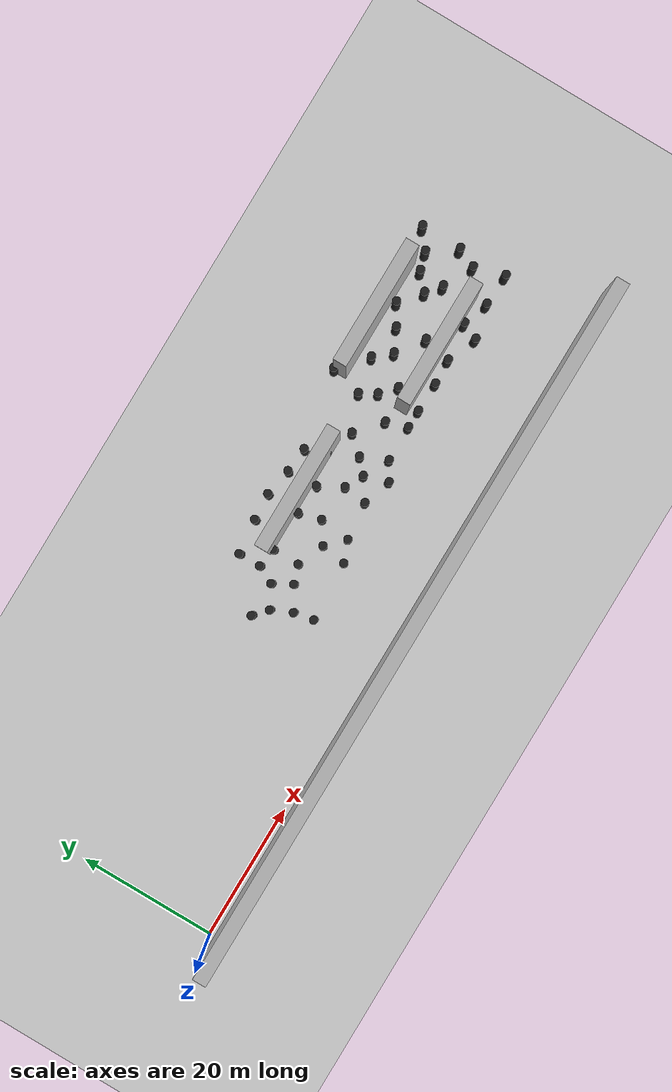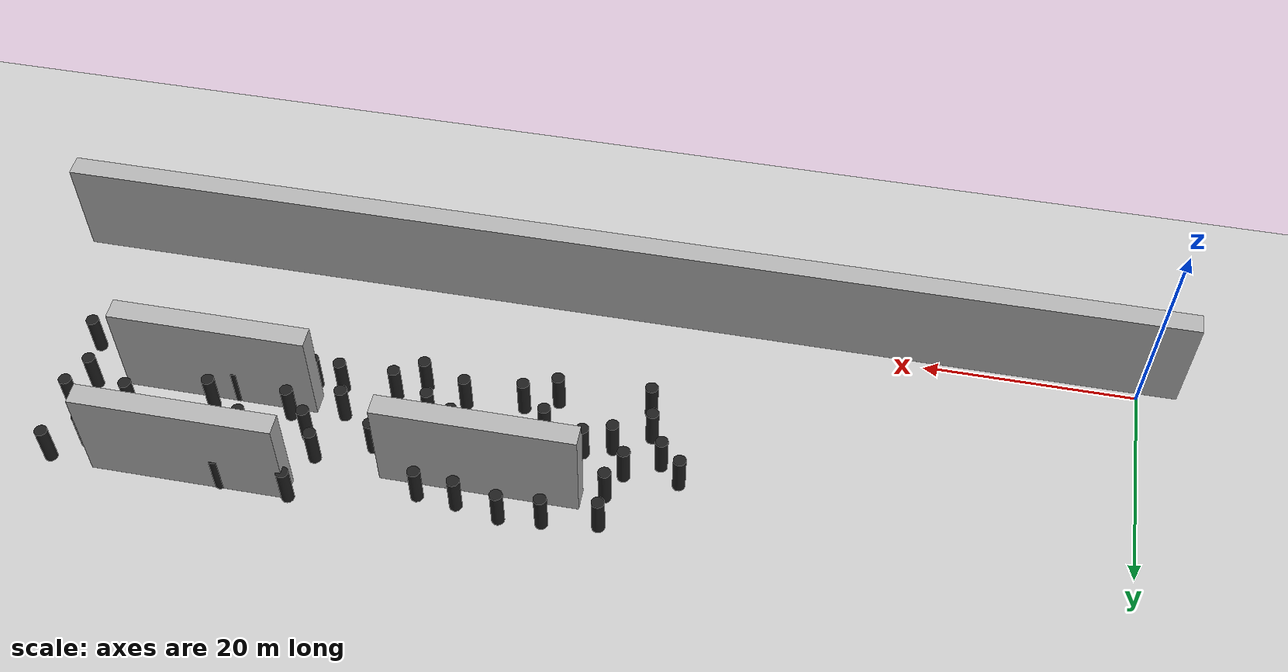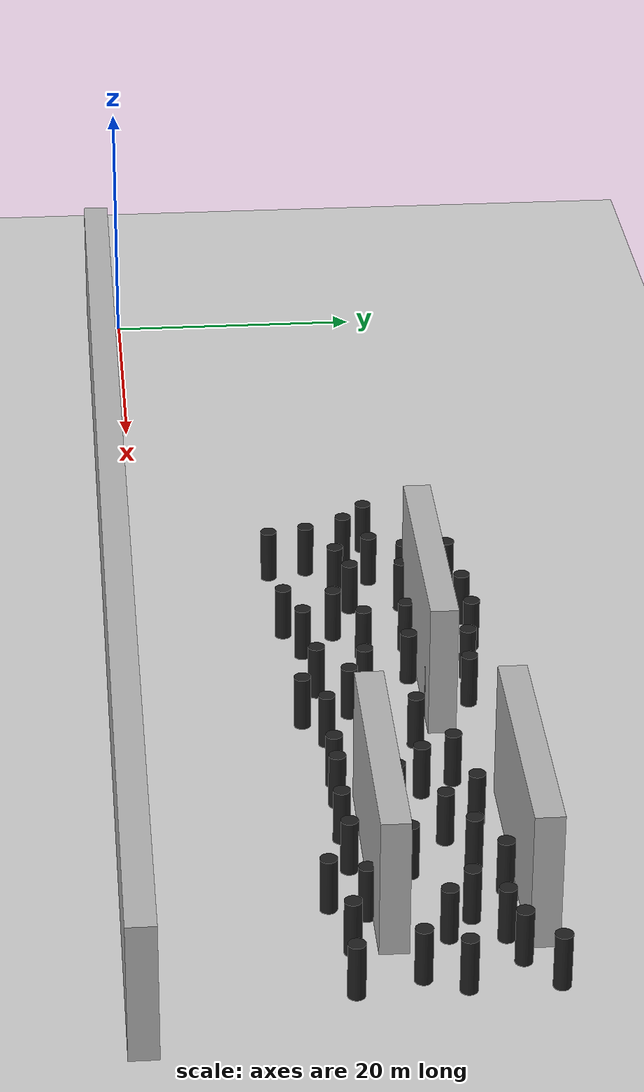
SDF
<sdf version="1.7">
 <world name="default">
  <model name="ground_plane">
   <pose>20 20 0 0 -0 0</pose>
   <static>1</static>
   <link name="link">
    <collision name="collision">
     <geometry><plane><normal>0 0 1</normal><size>200 200</size></plane></geometry>
     <surface><friction><ode><mu>100</mu><mu2>50</mu2></ode></friction></surface>
    </collision>
    <visual name="visual">
     <cast_shadows>0</cast_shadows>
     <geometry><plane><normal>0 0 1</normal><size>200 200</size></plane></geometry>
     <material>
      <script><uri>file://media/materials/scripts/gazebo.material</uri><name>Gazebo/Grey</name></script>
     </material>
    </visual>
   </link>
  </model>
  <model name="pillar_bottom_area_0">
   <static>1</static>
   <pose>47.0649 20.12 0 0 -0 0</pose>
   <link name="link">
    <pose>0 0 2 0 -0 0</pose>
    <inertial>
     <mass>1</mass>
     <inertia><ixx>0.083</ixx><ixy>0</ixy><ixz>0</ixz><iyy>0.083</iyy><iyz>0</iyz><izz>0.083</izz></inertia>
    </inertial>
    <collision name="collision">
     <geometry><cylinder><radius>0.6</radius><length>4</length></cylinder></geometry>
    </collision>
    <visual name="visual">
     <geometry><cylinder><radius>0.6</radius><length>4</length></cylinder></geometry>
     <material>
      <script><uri>file://media/materials/scripts/gazebo.material</uri><name>Gazebo/Black</name></script>
     </material>
    </visual>
   </link>
  </model>
  <model name="pillar_bottom_area_1">
   <static>1</static>
   <pose>84.1416 12.7099 0 0 -0 0</pose>
   <link name="link">
    <pose>0 0 2 0 -0 0</pose>
    <inertial>
     <mass>1</mass>
     <inertia><ixx>0.083</ixx><ixy>0</ixy><ixz>0</ixz><iyy>0.083</iyy><iyz>0</iyz><izz>0.083</izz></inertia>
    </inertial>
    <collision name="collision">
     <geometry><cylinder><radius>0.6</radius><length>4</length></cylinder></geometry>
    </collision>
    <visual name="visual">
     <geometry><cylinder><radius>0.6</radius><length>4</length></cylinder></geometry>
     <material>
      <script><uri>file://media/materials/scripts/gazebo.material</uri><name>Gazebo/Black</name></script>
     </material>
    </visual>
   </link>
  </model>
  <model name="pillar_bottom_area_2">
   <static>1</static>
   <pose>72.5903 15.6556 0 0 -0 0</pose>
   <link name="link">
    <pose>0 0 2 0 -0 0</pose>
    <inertial>
     <mass>1</mass>
     <inertia><ixx>0.083</ixx><ixy>0</ixy><ixz>0</ixz><iyy>0.083</iyy><iyz>0</iyz><izz>0.083</izz></inertia>
    </inertial>
    <collision name="collision">
     <geometry><cylinder><radius>0.6</radius><length>4</length></cylinder></geometry>
    </collision>
    <visual name="visual">
     <geometry><cylinder><radius>0.6</radius><length>4</length></cylinder></geometry>
     <material>
      <script><uri>file://media/materials/scripts/gazebo.material</uri><name>Gazebo/Black</name></script>
     </material>
    </visual>
   </link>
  </model>
  <model name="pillar_bottom_area_6">
   <static>1</static>
   <pose>76.1727 12.587 0 0 -0 0</pose>
   <link name="link">
    <pose>0 0 2 0 -0 0</pose>
    <inertial>
     <mass>1</mass>
     <inertia><ixx>0.083</ixx><ixy>0</ixy><ixz>0</ixz><iyy>0.083</iyy><iyz>0</iyz><izz>0.083</izz></inertia>
    </inertial>
    <collision name="collision">
     <geometry><cylinder><radius>0.6</radius><length>4</length></cylinder></geometry>
    </collision>
    <visual name="visual">
     <geometry><cylinder><radius>0.6</radius><length>4</length></cylinder></geometry>
     <material>
      <script><uri>file://media/materials/scripts/gazebo.material</uri><name>Gazebo/Black</name></script>
     </material>
    </visual>
   </link>
  </model>
  <model name="pillar_bottom_area_11">
   <static>1</static>
   <pose>53.8203 14.1874 0 0 -0 0</pose>
   <link name="link">
    <pose>0 0 2 0 -0 0</pose>
    <inertial>
     <mass>1</mass>
     <inertia><ixx>0.083</ixx><ixy>0</ixy><ixz>0</ixz><iyy>0.083</iyy><iyz>0</iyz><izz>0.083</izz></inertia>
    </inertial>
    <collision name="collision">
     <geometry><cylinder><radius>0.6</radius><length>4</length></cylinder></geometry>
    </collision>
    <visual name="visual">
     <geometry><cylinder><radius>0.6</radius><length>4</length></cylinder></geometry>
     <material>
      <script><uri>file://media/materials/scripts/gazebo.material</uri><name>Gazebo/Black</name></script>
     </material>
    </visual>
   </link>
  </model>
  <model name="pillar_bottom_area_15">
   <static>1</static>
   <pose>56.7745 16.1801 0 0 -0 0</pose>
   <link name="link">
    <pose>0 0 2 0 -0 0</pose>
    <inertial>
     <mass>1</mass>
     <inertia><ixx>0.083</ixx><ixy>0</ixy><ixz>0</ixz><iyy>0.083</iyy><iyz>0</iyz><izz>0.083</izz></inertia>
    </inertial>
    <collision name="collision">
     <geometry><cylinder><radius>0.6</radius><length>4</length></cylinder></geometry>
    </collision>
    <visual name="visual">
     <geometry><cylinder><radius>0.6</radius><length>4</length></cylinder></geometry>
     <material>
      <script><uri>file://media/materials/scripts/gazebo.material</uri><name>Gazebo/Black</name></script>
     </material>
    </visual>
   </link>
  </model>
  <model name="pillar_bottom_area_16">
   <static>1</static>
   <pose>60.0538 23.4727 0 0 -0 0</pose>
   <link name="link">
    <pose>0 0 2 0 -0 0</pose>
    <inertial>
     <mass>1</mass>
     <inertia><ixx>0.083</ixx><ixy>0</ixy><ixz>0</ixz><iyy>0.083</iyy><iyz>0</iyz><izz>0.083</izz></inertia>
    </inertial>
    <collision name="collision">
     <geometry><cylinder><radius>0.6</radius><length>4</length></cylinder></geometry>
    </collision>
    <visual name="visual">
     <geometry><cylinder><radius>0.6</radius><length>4</length></cylinder></geometry>
     <material>
      <script><uri>file://media/materials/scripts/gazebo.material</uri><name>Gazebo/Black</name></script>
     </material>
    </visual>
   </link>
  </model>
  <model name="pillar_bottom_area_18">
   <static>1</static>
   <pose>97.912 19.0956 0 0 -0 0</pose>
   <link name="link">
    <pose>0 0 2 0 -0 0</pose>
    <inertial>
     <mass>1</mass>
     <inertia><ixx>0.083</ixx><ixy>0</ixy><ixz>0</ixz><iyy>0.083</iyy><iyz>0</iyz><izz>0.083</izz></inertia>
    </inertial>
    <collision name="collision">
     <geometry><cylinder><radius>0.6</radius><length>4</length></cylinder></geometry>
    </collision>
    <visual name="visual">
     <geometry><cylinder><radius>0.6</radius><length>4</length></cylinder></geometry>
     <material>
      <script><uri>file://media/materials/scripts/gazebo.material</uri><name>Gazebo/Black</name></script>
     </material>
    </visual>
   </link>
  </model>
  <model name="pillar_bottom_area_24">
   <static>1</static>
   <pose>42.6407 15.8855 0 0 -0 0</pose>
   <link name="link">
    <pose>0 0 2 0 -0 0</pose>
    <inertial>
     <mass>1</mass>
     <inertia><ixx>0.083</ixx><ixy>0</ixy><ixz>0</ixz><iyy>0.083</iyy><iyz>0</iyz><izz>0.083</izz></inertia>
    </inertial>
    <collision name="collision">
     <geometry><cylinder><radius>0.6</radius><length>4</length></cylinder></geometry>
    </collision>
    <visual name="visual">
     <geometry><cylinder><radius>0.6</radius><length>4</length></cylinder></geometry>
     <material>
      <script><uri>file://media/materials/scripts/gazebo.material</uri><name>Gazebo/Black</name></script>
     </material>
    </visual>
   </link>
  </model>
  <model name="pillar_bottom_area_25">
   <static>1</static>
   <pose>74.004 20.7848 0 0 -0 0</pose>
   <link name="link">
    <pose>0 0 2 0 -0 0</pose>
    <inertial>
     <mass>1</mass>
     <inertia><ixx>0.083</ixx><ixy>0</ixy><ixz>0</ixz><iyy>0.083</iyy><iyz>0</iyz><izz>0.083</izz></inertia>
    </inertial>
    <collision name="collision">
     <geometry><cylinder><radius>0.6</radius><length>4</length></cylinder></geometry>
    </collision>
    <visual name="visual">
     <geometry><cylinder><radius>0.6</radius><length>4</length></cylinder></geometry>
     <material>
      <script><uri>file://media/materials/scripts/gazebo.material</uri><name>Gazebo/Black</name></script>
     </material>
    </visual>
   </link>
  </model>
  <model name="pillar_bottom_area_27">
   <static>1</static>
   <pose>49.9434 15.7807 0 0 -0 0</pose>
   <link name="link">
    <pose>0 0 2 0 -0 0</pose>
    <inertial>
     <mass>1</mass>
     <inertia><ixx>0.083</ixx><ixy>0</ixy><ixz>0</ixz><iyy>0.083</iyy><iyz>0</iyz><izz>0.083</izz></inertia>
    </inertial>
    <collision name="collision">
     <geometry><cylinder><radius>0.6</radius><length>4</length></cylinder></geometry>
    </collision>
    <visual name="visual">
     <geometry><cylinder><radius>0.6</radius><length>4</length></cylinder></geometry>
     <material>
      <script><uri>file://media/materials/scripts/gazebo.material</uri><name>Gazebo/Black</name></script>
     </material>
    </visual>
   </link>
  </model>
  <model name="pillar_bottom_area_28">
   <static>1</static>
   <pose>61.7428 12.3351 0 0 -0 0</pose>
   <link name="link">
    <pose>0 0 2 0 -0 0</pose>
    <inertial>
     <mass>1</mass>
     <inertia><ixx>0.083</ixx><ixy>0</ixy><ixz>0</ixz><iyy>0.083</iyy><iyz>0</iyz><izz>0.083</izz></inertia>
    </inertial>
    <collision name="collision">
     <geometry><cylinder><radius>0.6</radius><length>4</length></cylinder></geometry>
    </collision>
    <visual name="visual">
     <geometry><cylinder><radius>0.6</radius><length>4</length></cylinder></geometry>
     <material>
      <script><uri>file://media/materials/scripts/gazebo.material</uri><name>Gazebo/Black</name></script>
     </material>
    </visual>
   </link>
  </model>
  <model name="pillar_bottom_area_30">
   <static>1</static>
   <pose>80.5026 12.5165 0 0 -0 0</pose>
   <link name="link">
    <pose>0 0 2 0 -0 0</pose>
    <inertial>
     <mass>1</mass>
     <inertia><ixx>0.083</ixx><ixy>0</ixy><ixz>0</ixz><iyy>0.083</iyy><iyz>0</iyz><izz>0.083</izz></inertia>
    </inertial>
    <collision name="collision">
     <geometry><cylinder><radius>0.6</radius><length>4</length></cylinder></geometry>
    </collision>
    <visual name="visual">
     <geometry><cylinder><radius>0.6</radius><length>4</length></cylinder></geometry>
     <material>
      <script><uri>file://media/materials/scripts/gazebo.material</uri><name>Gazebo/Black</name></script>
     </material>
    </visual>
   </link>
  </model>
  <model name="pillar_bottom_area_39">
   <static>1</static>
   <pose>90.3237 20.1662 0 0 -0 0</pose>
   <link name="link">
    <pose>0 0 2 0 -0 0</pose>
    <inertial>
     <mass>1</mass>
     <inertia><ixx>0.083</ixx><ixy>0</ixy><ixz>0</ixz><iyy>0.083</iyy><iyz>0</iyz><izz>0.083</izz></inertia>
    </inertial>
    <collision name="collision">
     <geometry><cylinder><radius>0.6</radius><length>4</length></cylinder></geometry>
    </collision>
    <visual name="visual">
     <geometry><cylinder><radius>0.6</radius><length>4</length></cylinder></geometry>
     <material>
      <script><uri>file://media/materials/scripts/gazebo.material</uri><name>Gazebo/Black</name></script>
     </material>
    </visual>
   </link>
  </model>
  <model name="pillar_bottom_area_41">
   <static>1</static>
   <pose>55.9895 24.2098 0 0 -0 0</pose>
   <link name="link">
    <pose>0 0 2 0 -0 0</pose>
    <inertial>
     <mass>1</mass>
     <inertia><ixx>0.083</ixx><ixy>0</ixy><ixz>0</ixz><iyy>0.083</iyy><iyz>0</iyz><izz>0.083</izz></inertia>
    </inertial>
    <collision name="collision">
     <geometry><cylinder><radius>0.6</radius><length>4</length></cylinder></geometry>
    </collision>
    <visual name="visual">
     <geometry><cylinder><radius>0.6</radius><length>4</length></cylinder></geometry>
     <material>
      <script><uri>file://media/materials/scripts/gazebo.material</uri><name>Gazebo/Black</name></script>
     </material>
    </visual>
   </link>
  </model>
  <model name="pillar_bottom_area_42">
   <static>1</static>
   <pose>75.1718 25.3765 0 0 -0 0</pose>
   <link name="link">
    <pose>0 0 2 0 -0 0</pose>
    <inertial>
     <mass>1</mass>
     <inertia><ixx>0.083</ixx><ixy>0</ixy><ixz>0</ixz><iyy>0.083</iyy><iyz>0</iyz><izz>0.083</izz></inertia>
    </inertial>
    <collision name="collision">
     <geometry><cylinder><radius>0.6</radius><length>4</length></cylinder></geometry>
    </collision>
    <visual name="visual">
     <geometry><cylinder><radius>0.6</radius><length>4</length></cylinder></geometry>
     <material>
      <script><uri>file://media/materials/scripts/gazebo.material</uri><name>Gazebo/Black</name></script>
     </material>
    </visual>
   </link>
  </model>
  <model name="pillar_bottom_area_50">
   <static>1</static>
   <pose>64.7699 14.4294 0 0 -0 0</pose>
   <link name="link">
    <pose>0 0 2 0 -0 0</pose>
    <inertial>
     <mass>1</mass>
     <inertia><ixx>0.083</ixx><ixy>0</ixy><ixz>0</ixz><iyy>0.083</iyy><iyz>0</iyz><izz>0.083</izz></inertia>
    </inertial>
    <collision name="collision">
     <geometry><cylinder><radius>0.6</radius><length>4</length></cylinder></geometry>
    </collision>
    <visual name="visual">
     <geometry><cylinder><radius>0.6</radius><length>4</length></cylinder></geometry>
     <material>
      <script><uri>file://media/materials/scripts/gazebo.material</uri><name>Gazebo/Black</name></script>
     </material>
    </visual>
   </link>
  </model>
  <model name="pillar_bottom_area_51">
   <static>1</static>
   <pose>89.5612 13.3866 0 0 -0 0</pose>
   <link name="link">
    <pose>0 0 2 0 -0 0</pose>
    <inertial>
     <mass>1</mass>
     <inertia><ixx>0.083</ixx><ixy>0</ixy><ixz>0</ixz><iyy>0.083</iyy><iyz>0</iyz><izz>0.083</izz></inertia>
    </inertial>
    <collision name="collision">
     <geometry><cylinder><radius>0.6</radius><length>4</length></cylinder></geometry>
    </collision>
    <visual name="visual">
     <geometry><cylinder><radius>0.6</radius><length>4</length></cylinder></geometry>
     <material>
      <script><uri>file://media/materials/scripts/gazebo.material</uri><name>Gazebo/Black</name></script>
     </material>
    </visual>
   </link>
  </model>
  <model name="pillar_bottom_area_54">
   <static>1</static>
   <pose>96.6712 16.3282 0 0 -0 0</pose>
   <link name="link">
    <pose>0 0 2 0 -0 0</pose>
    <inertial>
     <mass>1</mass>
     <inertia><ixx>0.083</ixx><ixy>0</ixy><ixz>0</ixz><iyy>0.083</iyy><iyz>0</iyz><izz>0.083</izz></inertia>
    </inertial>
    <collision name="collision">
     <geometry><cylinder><radius>0.6</radius><length>4</length></cylinder></geometry>
    </collision>
    <visual name="visual">
     <geometry><cylinder><radius>0.6</radius><length>4</length></cylinder></geometry>
     <material>
      <script><uri>file://media/materials/scripts/gazebo.material</uri><name>Gazebo/Black</name></script>
     </material>
    </visual>
   </link>
  </model>
  <model name="pillar_bottom_area_59">
   <static>1</static>
   <pose>66.7441 16.2163 0 0 -0 0</pose>
   <link name="link">
    <pose>0 0 2 0 -0 0</pose>
    <inertial>
     <mass>1</mass>
     <inertia><ixx>0.083</ixx><ixy>0</ixy><ixz>0</ixz><iyy>0.083</iyy><iyz>0</iyz><izz>0.083</izz></inertia>
    </inertial>
    <collision name="collision">
     <geometry><cylinder><radius>0.6</radius><length>4</length></cylinder></geometry>
    </collision>
    <visual name="visual">
     <geometry><cylinder><radius>0.6</radius><length>4</length></cylinder></geometry>
     <material>
      <script><uri>file://media/materials/scripts/gazebo.material</uri><name>Gazebo/Black</name></script>
     </material>
    </visual>
   </link>
  </model>
  <model name="pillar_bottom_area_64">
   <static>1</static>
   <pose>81.581 25.0597 0 0 -0 0</pose>
   <link name="link">
    <pose>0 0 2 0 -0 0</pose>
    <inertial>
     <mass>1</mass>
     <inertia><ixx>0.083</ixx><ixy>0</ixy><ixz>0</ixz><iyy>0.083</iyy><iyz>0</iyz><izz>0.083</izz></inertia>
    </inertial>
    <collision name="collision">
     <geometry><cylinder><radius>0.6</radius><length>4</length></cylinder></geometry>
    </collision>
    <visual name="visual">
     <geometry><cylinder><radius>0.6</radius><length>4</length></cylinder></geometry>
     <material>
      <script><uri>file://media/materials/scripts/gazebo.material</uri><name>Gazebo/Black</name></script>
     </material>
    </visual>
   </link>
  </model>
  <model name="pillar_bottom_area_65">
   <static>1</static>
   <pose>68.987 18.7455 0 0 -0 0</pose>
   <link name="link">
    <pose>0 0 2 0 -0 0</pose>
    <inertial>
     <mass>1</mass>
     <inertia><ixx>0.083</ixx><ixy>0</ixy><ixz>0</ixz><iyy>0.083</iyy><iyz>0</iyz><izz>0.083</izz></inertia>
    </inertial>
    <collision name="collision">
     <geometry><cylinder><radius>0.6</radius><length>4</length></cylinder></geometry>
    </collision>
    <visual name="visual">
     <geometry><cylinder><radius>0.6</radius><length>4</length></cylinder></geometry>
     <material>
      <script><uri>file://media/materials/scripts/gazebo.material</uri><name>Gazebo/Black</name></script>
     </material>
    </visual>
   </link>
  </model>
  <model name="pillar_bottom_area_70">
   <static>1</static>
   <pose>79.127 21.8158 0 0 -0 0</pose>
   <link name="link">
    <pose>0 0 2 0 -0 0</pose>
    <inertial>
     <mass>1</mass>
     <inertia><ixx>0.083</ixx><ixy>0</ixy><ixz>0</ixz><iyy>0.083</iyy><iyz>0</iyz><izz>0.083</izz></inertia>
    </inertial>
    <collision name="collision">
     <geometry><cylinder><radius>0.6</radius><length>4</length></cylinder></geometry>
    </collision>
    <visual name="visual">
     <geometry><cylinder><radius>0.6</radius><length>4</length></cylinder></geometry>
     <material>
      <script><uri>file://media/materials/scripts/gazebo.material</uri><name>Gazebo/Black</name></script>
     </material>
    </visual>
   </link>
  </model>
  <model name="pillar_bottom_area_71">
   <static>1</static>
   <pose>40.7239 17.6027 0 0 -0 0</pose>
   <link name="link">
    <pose>0 0 2 0 -0 0</pose>
    <inertial>
     <mass>1</mass>
     <inertia><ixx>0.083</ixx><ixy>0</ixy><ixz>0</ixz><iyy>0.083</iyy><iyz>0</iyz><izz>0.083</izz></inertia>
    </inertial>
    <collision name="collision">
     <geometry><cylinder><radius>0.6</radius><length>4</length></cylinder></geometry>
    </collision>
    <visual name="visual">
     <geometry><cylinder><radius>0.6</radius><length>4</length></cylinder></geometry>
     <material>
      <script><uri>file://media/materials/scripts/gazebo.material</uri><name>Gazebo/Black</name></script>
     </material>
    </visual>
   </link>
  </model>
  <model name="pillar_bottom_area_73">
   <static>1</static>
   <pose>43.9921 12.9212 0 0 -0 0</pose>
   <link name="link">
    <pose>0 0 2 0 -0 0</pose>
    <inertial>
     <mass>1</mass>
     <inertia><ixx>0.083</ixx><ixy>0</ixy><ixz>0</ixz><iyy>0.083</iyy><iyz>0</iyz><izz>0.083</izz></inertia>
    </inertial>
    <collision name="collision">
     <geometry><cylinder><radius>0.6</radius><length>4</length></cylinder></geometry>
    </collision>
    <visual name="visual">
     <geometry><cylinder><radius>0.6</radius><length>4</length></cylinder></geometry>
     <material>
      <script><uri>file://media/materials/scripts/gazebo.material</uri><name>Gazebo/Black</name></script>
     </material>
    </visual>
   </link>
  </model>
  <model name="pillar_bottom_area_80">
   <static>1</static>
   <pose>47.0308 23.3363 0 0 -0 0</pose>
   <link name="link">
    <pose>0 0 2 0 -0 0</pose>
    <inertial>
     <mass>1</mass>
     <inertia><ixx>0.083</ixx><ixy>0</ixy><ixz>0</ixz><iyy>0.083</iyy><iyz>0</iyz><izz>0.083</izz></inertia>
    </inertial>
    <collision name="collision">
     <geometry><cylinder><radius>0.6</radius><length>4</length></cylinder></geometry>
    </collision>
    <visual name="visual">
     <geometry><cylinder><radius>0.6</radius><length>4</length></cylinder></geometry>
     <material>
      <script><uri>file://media/materials/scripts/gazebo.material</uri><name>Gazebo/Black</name></script>
     </material>
    </visual>
   </link>
  </model>
  <model name="pillar_bottom_area_84">
   <static>1</static>
   <pose>81.1895 19.457 0 0 -0 0</pose>
   <link name="link">
    <pose>0 0 2 0 -0 0</pose>
    <inertial>
     <mass>1</mass>
     <inertia><ixx>0.083</ixx><ixy>0</ixy><ixz>0</ixz><iyy>0.083</iyy><iyz>0</iyz><izz>0.083</izz></inertia>
    </inertial>
    <collision name="collision">
     <geometry><cylinder><radius>0.6</radius><length>4</length></cylinder></geometry>
    </collision>
    <visual name="visual">
     <geometry><cylinder><radius>0.6</radius><length>4</length></cylinder></geometry>
     <material>
      <script><uri>file://media/materials/scripts/gazebo.material</uri><name>Gazebo/Black</name></script>
     </material>
    </visual>
   </link>
  </model>
  <model name="pillar_bottom_area_86">
   <static>1</static>
   <pose>97.9682 11.9436 0 0 -0 0</pose>
   <link name="link">
    <pose>0 0 2 0 -0 0</pose>
    <inertial>
     <mass>1</mass>
     <inertia><ixx>0.083</ixx><ixy>0</ixy><ixz>0</ixz><iyy>0.083</iyy><iyz>0</iyz><izz>0.083</izz></inertia>
    </inertial>
    <collision name="collision">
     <geometry><cylinder><radius>0.6</radius><length>4</length></cylinder></geometry>
    </collision>
    <visual name="visual">
     <geometry><cylinder><radius>0.6</radius><length>4</length></cylinder></geometry>
     <material>
      <script><uri>file://media/materials/scripts/gazebo.material</uri><name>Gazebo/Black</name></script>
     </material>
    </visual>
   </link>
  </model>
  <model name="pillar_bottom_area_89">
   <static>1</static>
   <pose>49.9066 19.6763 0 0 -0 0</pose>
   <link name="link">
    <pose>0 0 2 0 -0 0</pose>
    <inertial>
     <mass>1</mass>
     <inertia><ixx>0.083</ixx><ixy>0</ixy><ixz>0</ixz><iyy>0.083</iyy><iyz>0</iyz><izz>0.083</izz></inertia>
    </inertial>
    <collision name="collision">
     <geometry><cylinder><radius>0.6</radius><length>4</length></cylinder></geometry>
    </collision>
    <visual name="visual">
     <geometry><cylinder><radius>0.6</radius><length>4</length></cylinder></geometry>
     <material>
      <script><uri>file://media/materials/scripts/gazebo.material</uri><name>Gazebo/Black</name></script>
     </material>
    </visual>
   </link>
  </model>
  <model name="pillar_bottom_area_92">
   <static>1</static>
   <pose>65.1708 20.3562 0 0 -0 0</pose>
   <link name="link">
    <pose>0 0 2 0 -0 0</pose>
    <inertial>
     <mass>1</mass>
     <inertia><ixx>0.083</ixx><ixy>0</ixy><ixz>0</ixz><iyy>0.083</iyy><iyz>0</iyz><izz>0.083</izz></inertia>
    </inertial>
    <collision name="collision">
     <geometry><cylinder><radius>0.6</radius><length>4</length></cylinder></geometry>
    </collision>
    <visual name="visual">
     <geometry><cylinder><radius>0.6</radius><length>4</length></cylinder></geometry>
     <material>
      <script><uri>file://media/materials/scripts/gazebo.material</uri><name>Gazebo/Black</name></script>
     </material>
    </visual>
   </link>
  </model>
  <model name="pillar_bottom_area_96">
   <static>1</static>
   <pose>56.3076 11.7569 0 0 -0 0</pose>
   <link name="link">
    <pose>0 0 2 0 -0 0</pose>
    <inertial>
     <mass>1</mass>
     <inertia><ixx>0.083</ixx><ixy>0</ixy><ixz>0</ixz><iyy>0.083</iyy><iyz>0</iyz><izz>0.083</izz></inertia>
    </inertial>
    <collision name="collision">
     <geometry><cylinder><radius>0.6</radius><length>4</length></cylinder></geometry>
    </collision>
    <visual name="visual">
     <geometry><cylinder><radius>0.6</radius><length>4</length></cylinder></geometry>
     <material>
      <script><uri>file://media/materials/scripts/gazebo.material</uri><name>Gazebo/Black</name></script>
     </material>
    </visual>
   </link>
  </model>
  <model name="pillar_bottom_area_97">
   <static>1</static>
   <pose>84.9856 16.6913 0 0 -0 0</pose>
   <link name="link">
    <pose>0 0 2 0 -0 0</pose>
    <inertial>
     <mass>1</mass>
     <inertia><ixx>0.083</ixx><ixy>0</ixy><ixz>0</ixz><iyy>0.083</iyy><iyz>0</iyz><izz>0.083</izz></inertia>
    </inertial>
    <collision name="collision">
     <geometry><cylinder><radius>0.6</radius><length>4</length></cylinder></geometry>
    </collision>
    <visual name="visual">
     <geometry><cylinder><radius>0.6</radius><length>4</length></cylinder></geometry>
     <material>
      <script><uri>file://media/materials/scripts/gazebo.material</uri><name>Gazebo/Black</name></script>
     </material>
    </visual>
   </link>
  </model>
  <model name="pillar_bottom_area_100">
   <static>1</static>
   <pose>47.3141 14.8752 0 0 -0 0</pose>
   <link name="link">
    <pose>0 0 2 0 -0 0</pose>
    <inertial>
     <mass>1</mass>
     <inertia><ixx>0.083</ixx><ixy>0</ixy><ixz>0</ixz><iyy>0.083</iyy><iyz>0</iyz><izz>0.083</izz></inertia>
    </inertial>
    <collision name="collision">
     <geometry><cylinder><radius>0.6</radius><length>4</length></cylinder></geometry>
    </collision>
    <visual name="visual">
     <geometry><cylinder><radius>0.6</radius><length>4</length></cylinder></geometry>
     <material>
      <script><uri>file://media/materials/scripts/gazebo.material</uri><name>Gazebo/Black</name></script>
     </material>
    </visual>
   </link>
  </model>
  <model name="pillar_bottom_area_107">
   <static>1</static>
   <pose>87.2519 22.756 0 0 -0 0</pose>
   <link name="link">
    <pose>0 0 2 0 -0 0</pose>
    <inertial>
     <mass>1</mass>
     <inertia><ixx>0.083</ixx><ixy>0</ixy><ixz>0</ixz><iyy>0.083</iyy><iyz>0</iyz><izz>0.083</izz></inertia>
    </inertial>
    <collision name="collision">
     <geometry><cylinder><radius>0.6</radius><length>4</length></cylinder></geometry>
    </collision>
    <visual name="visual">
     <geometry><cylinder><radius>0.6</radius><length>4</length></cylinder></geometry>
     <material>
      <script><uri>file://media/materials/scripts/gazebo.material</uri><name>Gazebo/Black</name></script>
     </material>
    </visual>
   </link>
  </model>
  <model name="pillar_bottom_area_111">
   <static>1</static>
   <pose>82.8768 15.2179 0 0 -0 0</pose>
   <link name="link">
    <pose>0 0 2 0 -0 0</pose>
    <inertial>
     <mass>1</mass>
     <inertia><ixx>0.083</ixx><ixy>0</ixy><ixz>0</ixz><iyy>0.083</iyy><iyz>0</iyz><izz>0.083</izz></inertia>
    </inertial>
    <collision name="collision">
     <geometry><cylinder><radius>0.6</radius><length>4</length></cylinder></geometry>
    </collision>
    <visual name="visual">
     <geometry><cylinder><radius>0.6</radius><length>4</length></cylinder></geometry>
     <material>
      <script><uri>file://media/materials/scripts/gazebo.material</uri><name>Gazebo/Black</name></script>
     </material>
    </visual>
   </link>
  </model>
  <model name="pillar_bottom_area_113">
   <static>1</static>
   <pose>52.0945 23.9391 0 0 -0 0</pose>
   <link name="link">
    <pose>0 0 2 0 -0 0</pose>
    <inertial>
     <mass>1</mass>
     <inertia><ixx>0.083</ixx><ixy>0</ixy><ixz>0</ixz><iyy>0.083</iyy><iyz>0</iyz><izz>0.083</izz></inertia>
    </inertial>
    <collision name="collision">
     <geometry><cylinder><radius>0.6</radius><length>4</length></cylinder></geometry>
    </collision>
    <visual name="visual">
     <geometry><cylinder><radius>0.6</radius><length>4</length></cylinder></geometry>
     <material>
      <script><uri>file://media/materials/scripts/gazebo.material</uri><name>Gazebo/Black</name></script>
     </material>
    </visual>
   </link>
  </model>
  <model name="pillar_bottom_area_125">
   <static>1</static>
   <pose>73.5763 12.5924 0 0 -0 0</pose>
   <link name="link">
    <pose>0 0 2 0 -0 0</pose>
    <inertial>
     <mass>1</mass>
     <inertia><ixx>0.083</ixx><ixy>0</ixy><ixz>0</ixz><iyy>0.083</iyy><iyz>0</iyz><izz>0.083</izz></inertia>
    </inertial>
    <collision name="collision">
     <geometry><cylinder><radius>0.6</radius><length>4</length></cylinder></geometry>
    </collision>
    <visual name="visual">
     <geometry><cylinder><radius>0.6</radius><length>4</length></cylinder></geometry>
     <material>
      <script><uri>file://media/materials/scripts/gazebo.material</uri><name>Gazebo/Black</name></script>
     </material>
    </visual>
   </link>
  </model>
  <model name="pillar_bottom_area_126">
   <static>1</static>
   <pose>95.1441 22.9487 0 0 -0 0</pose>
   <link name="link">
    <pose>0 0 2 0 -0 0</pose>
    <inertial>
     <mass>1</mass>
     <inertia><ixx>0.083</ixx><ixy>0</ixy><ixz>0</ixz><iyy>0.083</iyy><iyz>0</iyz><izz>0.083</izz></inertia>
    </inertial>
    <collision name="collision">
     <geometry><cylinder><radius>0.6</radius><length>4</length></cylinder></geometry>
    </collision>
    <visual name="visual">
     <geometry><cylinder><radius>0.6</radius><length>4</length></cylinder></geometry>
     <material>
      <script><uri>file://media/materials/scripts/gazebo.material</uri><name>Gazebo/Black</name></script>
     </material>
    </visual>
   </link>
  </model>
  <model name="pillar_bottom_area_146">
   <static>1</static>
   <pose>68.4016 12.518 0 0 -0 0</pose>
   <link name="link">
    <pose>0 0 2 0 -0 0</pose>
    <inertial>
     <mass>1</mass>
     <inertia><ixx>0.083</ixx><ixy>0</ixy><ixz>0</ixz><iyy>0.083</iyy><iyz>0</iyz><izz>0.083</izz></inertia>
    </inertial>
    <collision name="collision">
     <geometry><cylinder><radius>0.6</radius><length>4</length></cylinder></geometry>
    </collision>
    <visual name="visual">
     <geometry><cylinder><radius>0.6</radius><length>4</length></cylinder></geometry>
     <material>
      <script><uri>file://media/materials/scripts/gazebo.material</uri><name>Gazebo/Black</name></script>
     </material>
    </visual>
   </link>
  </model>
  <model name="pillar_bottom_area_155">
   <static>1</static>
   <pose>44.556 10.0633 0 0 -0 0</pose>
   <link name="link">
    <pose>0 0 2 0 -0 0</pose>
    <inertial>
     <mass>1</mass>
     <inertia><ixx>0.083</ixx><ixy>0</ixy><ixz>0</ixz><iyy>0.083</iyy><iyz>0</iyz><izz>0.083</izz></inertia>
    </inertial>
    <collision name="collision">
     <geometry><cylinder><radius>0.6</radius><length>4</length></cylinder></geometry>
    </collision>
    <visual name="visual">
     <geometry><cylinder><radius>0.6</radius><length>4</length></cylinder></geometry>
     <material>
      <script><uri>file://media/materials/scripts/gazebo.material</uri><name>Gazebo/Black</name></script>
     </material>
    </visual>
   </link>
  </model>
  <model name="pillar_bottom_area_157">
   <static>1</static>
   <pose>84.3378 21.0152 0 0 -0 0</pose>
   <link name="link">
    <pose>0 0 2 0 -0 0</pose>
    <inertial>
     <mass>1</mass>
     <inertia><ixx>0.083</ixx><ixy>0</ixy><ixz>0</ixz><iyy>0.083</iyy><iyz>0</iyz><izz>0.083</izz></inertia>
    </inertial>
    <collision name="collision">
     <geometry><cylinder><radius>0.6</radius><length>4</length></cylinder></geometry>
    </collision>
    <visual name="visual">
     <geometry><cylinder><radius>0.6</radius><length>4</length></cylinder></geometry>
     <material>
      <script><uri>file://media/materials/scripts/gazebo.material</uri><name>Gazebo/Black</name></script>
     </material>
    </visual>
   </link>
  </model>
  <model name="pillar_bottom_area_164">
   <static>1</static>
   <pose>60.307 19.1304 0 0 -0 0</pose>
   <link name="link">
    <pose>0 0 2 0 -0 0</pose>
    <inertial>
     <mass>1</mass>
     <inertia><ixx>0.083</ixx><ixy>0</ixy><ixz>0</ixz><iyy>0.083</iyy><iyz>0</iyz><izz>0.083</izz></inertia>
    </inertial>
    <collision name="collision">
     <geometry><cylinder><radius>0.6</radius><length>4</length></cylinder></geometry>
    </collision>
    <visual name="visual">
     <geometry><cylinder><radius>0.6</radius><length>4</length></cylinder></geometry>
     <material>
      <script><uri>file://media/materials/scripts/gazebo.material</uri><name>Gazebo/Black</name></script>
     </material>
    </visual>
   </link>
  </model>
  <model name="pillar_bottom_area_175">
   <static>1</static>
   <pose>92.2687 24.9213 0 0 -0 0</pose>
   <link name="link">
    <pose>0 0 2 0 -0 0</pose>
    <inertial>
     <mass>1</mass>
     <inertia><ixx>0.083</ixx><ixy>0</ixy><ixz>0</ixz><iyy>0.083</iyy><iyz>0</iyz><izz>0.083</izz></inertia>
    </inertial>
    <collision name="collision">
     <geometry><cylinder><radius>0.6</radius><length>4</length></cylinder></geometry>
    </collision>
    <visual name="visual">
     <geometry><cylinder><radius>0.6</radius><length>4</length></cylinder></geometry>
     <material>
      <script><uri>file://media/materials/scripts/gazebo.material</uri><name>Gazebo/Black</name></script>
     </material>
    </visual>
   </link>
  </model>
  <model name="pillar_bottom_area_177">
   <static>1</static>
   <pose>55.8902 19.4094 0 0 -0 0</pose>
   <link name="link">
    <pose>0 0 2 0 -0 0</pose>
    <inertial>
     <mass>1</mass>
     <inertia><ixx>0.083</ixx><ixy>0</ixy><ixz>0</ixz><iyy>0.083</iyy><iyz>0</iyz><izz>0.083</izz></inertia>
    </inertial>
    <collision name="collision">
     <geometry><cylinder><radius>0.6</radius><length>4</length></cylinder></geometry>
    </collision>
    <visual name="visual">
     <geometry><cylinder><radius>0.6</radius><length>4</length></cylinder></geometry>
     <material>
      <script><uri>file://media/materials/scripts/gazebo.material</uri><name>Gazebo/Black</name></script>
     </material>
    </visual>
   </link>
  </model>
  <model name="pillar_bottom_area_181">
   <static>1</static>
   <pose>77.5152 16.5386 0 0 -0 0</pose>
   <link name="link">
    <pose>0 0 2 0 -0 0</pose>
    <inertial>
     <mass>1</mass>
     <inertia><ixx>0.083</ixx><ixy>0</ixy><ixz>0</ixz><iyy>0.083</iyy><iyz>0</iyz><izz>0.083</izz></inertia>
    </inertial>
    <collision name="collision">
     <geometry><cylinder><radius>0.6</radius><length>4</length></cylinder></geometry>
    </collision>
    <visual name="visual">
     <geometry><cylinder><radius>0.6</radius><length>4</length></cylinder></geometry>
     <material>
      <script><uri>file://media/materials/scripts/gazebo.material</uri><name>Gazebo/Black</name></script>
     </material>
    </visual>
   </link>
  </model>
  <model name="pillar_bottom_area_186">
   <static>1</static>
   <pose>92.5764 22.1784 0 0 -0 0</pose>
   <link name="link">
    <pose>0 0 2 0 -0 0</pose>
    <inertial>
     <mass>1</mass>
     <inertia><ixx>0.083</ixx><ixy>0</ixy><ixz>0</ixz><iyy>0.083</iyy><iyz>0</iyz><izz>0.083</izz></inertia>
    </inertial>
    <collision name="collision">
     <geometry><cylinder><radius>0.6</radius><length>4</length></cylinder></geometry>
    </collision>
    <visual name="visual">
     <geometry><cylinder><radius>0.6</radius><length>4</length></cylinder></geometry>
     <material>
      <script><uri>file://media/materials/scripts/gazebo.material</uri><name>Gazebo/Black</name></script>
     </material>
    </visual>
   </link>
  </model>
  <model name="pillar_bottom_area_198">
   <static>1</static>
   <pose>65.8427 10.9995 0 0 -0 0</pose>
   <link name="link">
    <pose>0 0 2 0 -0 0</pose>
    <inertial>
     <mass>1</mass>
     <inertia><ixx>0.083</ixx><ixy>0</ixy><ixz>0</ixz><iyy>0.083</iyy><iyz>0</iyz><izz>0.083</izz></inertia>
    </inertial>
    <collision name="collision">
     <geometry><cylinder><radius>0.6</radius><length>4</length></cylinder></geometry>
    </collision>
    <visual name="visual">
     <geometry><cylinder><radius>0.6</radius><length>4</length></cylinder></geometry>
     <material>
      <script><uri>file://media/materials/scripts/gazebo.material</uri><name>Gazebo/Black</name></script>
     </material>
    </visual>
   </link>
  </model>
  <model name="pillar_bottom_area_202">
   <static>1</static>
   <pose>45.8046 17.576 0 0 -0 0</pose>
   <link name="link">
    <pose>0 0 2 0 -0 0</pose>
    <inertial>
     <mass>1</mass>
     <inertia><ixx>0.083</ixx><ixy>0</ixy><ixz>0</ixz><iyy>0.083</iyy><iyz>0</iyz><izz>0.083</izz></inertia>
    </inertial>
    <collision name="collision">
     <geometry><cylinder><radius>0.6</radius><length>4</length></cylinder></geometry>
    </collision>
    <visual name="visual">
     <geometry><cylinder><radius>0.6</radius><length>4</length></cylinder></geometry>
     <material>
      <script><uri>file://media/materials/scripts/gazebo.material</uri><name>Gazebo/Black</name></script>
     </material>
    </visual>
   </link>
  </model>
  <model name="pillar_bottom_area_213">
   <static>1</static>
   <pose>92.3789 18.4534 0 0 -0 0</pose>
   <link name="link">
    <pose>0 0 2 0 -0 0</pose>
    <inertial>
     <mass>1</mass>
     <inertia><ixx>0.083</ixx><ixy>0</ixy><ixz>0</ixz><iyy>0.083</iyy><iyz>0</iyz><izz>0.083</izz></inertia>
    </inertial>
    <collision name="collision">
     <geometry><cylinder><radius>0.6</radius><length>4</length></cylinder></geometry>
    </collision>
    <visual name="visual">
     <geometry><cylinder><radius>0.6</radius><length>4</length></cylinder></geometry>
     <material>
      <script><uri>file://media/materials/scripts/gazebo.material</uri><name>Gazebo/Black</name></script>
     </material>
    </visual>
   </link>
  </model>
  <model name="pillar_bottom_area_233">
   <static>1</static>
   <pose>63.738 23.1462 0 0 -0 0</pose>
   <link name="link">
    <pose>0 0 2 0 -0 0</pose>
    <inertial>
     <mass>1</mass>
     <inertia><ixx>0.083</ixx><ixy>0</ixy><ixz>0</ixz><iyy>0.083</iyy><iyz>0</iyz><izz>0.083</izz></inertia>
    </inertial>
    <collision name="collision">
     <geometry><cylinder><radius>0.6</radius><length>4</length></cylinder></geometry>
    </collision>
    <visual name="visual">
     <geometry><cylinder><radius>0.6</radius><length>4</length></cylinder></geometry>
     <material>
      <script><uri>file://media/materials/scripts/gazebo.material</uri><name>Gazebo/Black</name></script>
     </material>
    </visual>
   </link>
  </model>
  <model name="pillar_bottom_area_272">
   <static>1</static>
   <pose>93.3242 12.1231 0 0 -0 0</pose>
   <link name="link">
    <pose>0 0 2 0 -0 0</pose>
    <inertial>
     <mass>1</mass>
     <inertia><ixx>0.083</ixx><ixy>0</ixy><ixz>0</ixz><iyy>0.083</iyy><iyz>0</iyz><izz>0.083</izz></inertia>
    </inertial>
    <collision name="collision">
     <geometry><cylinder><radius>0.6</radius><length>4</length></cylinder></geometry>
    </collision>
    <visual name="visual">
     <geometry><cylinder><radius>0.6</radius><length>4</length></cylinder></geometry>
     <material>
      <script><uri>file://media/materials/scripts/gazebo.material</uri><name>Gazebo/Black</name></script>
     </material>
    </visual>
   </link>
  </model>
  <model name="pillar_bottom_area_284">
   <static>1</static>
   <pose>89.6177 24.2766 0 0 -0 0</pose>
   <link name="link">
    <pose>0 0 2 0 -0 0</pose>
    <inertial>
     <mass>1</mass>
     <inertia><ixx>0.083</ixx><ixy>0</ixy><ixz>0</ixz><iyy>0.083</iyy><iyz>0</iyz><izz>0.083</izz></inertia>
    </inertial>
    <collision name="collision">
     <geometry><cylinder><radius>0.6</radius><length>4</length></cylinder></geometry>
    </collision>
    <visual name="visual">
     <geometry><cylinder><radius>0.6</radius><length>4</length></cylinder></geometry>
     <material>
      <script><uri>file://media/materials/scripts/gazebo.material</uri><name>Gazebo/Black</name></script>
     </material>
    </visual>
   </link>
  </model>
  <model name="pillar_bottom_area_306">
   <static>1</static>
   <pose>97.8723 25.0349 0 0 -0 0</pose>
   <link name="link">
    <pose>0 0 2 0 -0 0</pose>
    <inertial>
     <mass>1</mass>
     <inertia><ixx>0.083</ixx><ixy>0</ixy><ixz>0</ixz><iyy>0.083</iyy><iyz>0</iyz><izz>0.083</izz></inertia>
    </inertial>
    <collision name="collision">
     <geometry><cylinder><radius>0.6</radius><length>4</length></cylinder></geometry>
    </collision>
    <visual name="visual">
     <geometry><cylinder><radius>0.6</radius><length>4</length></cylinder></geometry>
     <material>
      <script><uri>file://media/materials/scripts/gazebo.material</uri><name>Gazebo/Black</name></script>
     </material>
    </visual>
   </link>
  </model>
  <model name="pillar_bottom_area_327">
   <static>1</static>
   <pose>62.1915 15.761 0 0 -0 0</pose>
   <link name="link">
    <pose>0 0 2 0 -0 0</pose>
    <inertial>
     <mass>1</mass>
     <inertia><ixx>0.083</ixx><ixy>0</ixy><ixz>0</ixz><iyy>0.083</iyy><iyz>0</iyz><izz>0.083</izz></inertia>
    </inertial>
    <collision name="collision">
     <geometry><cylinder><radius>0.6</radius><length>4</length></cylinder></geometry>
    </collision>
    <visual name="visual">
     <geometry><cylinder><radius>0.6</radius><length>4</length></cylinder></geometry>
     <material>
      <script><uri>file://media/materials/scripts/gazebo.material</uri><name>Gazebo/Black</name></script>
     </material>
    </visual>
   </link>
  </model>
  <model name="pillar_bottom_area_332">
   <static>1</static>
   <pose>88.4848 10.9661 0 0 -0 0</pose>
   <link name="link">
    <pose>0 0 2 0 -0 0</pose>
    <inertial>
     <mass>1</mass>
     <inertia><ixx>0.083</ixx><ixy>0</ixy><ixz>0</ixz><iyy>0.083</iyy><iyz>0</iyz><izz>0.083</izz></inertia>
    </inertial>
    <collision name="collision">
     <geometry><cylinder><radius>0.6</radius><length>4</length></cylinder></geometry>
    </collision>
    <visual name="visual">
     <geometry><cylinder><radius>0.6</radius><length>4</length></cylinder></geometry>
     <material>
      <script><uri>file://media/materials/scripts/gazebo.material</uri><name>Gazebo/Black</name></script>
     </material>
    </visual>
   </link>
  </model>
  <model name="pillar_bottom_area_342">
   <static>1</static>
   <pose>75.3695 18.4708 0 0 -0 0</pose>
   <link name="link">
    <pose>0 0 2 0 -0 0</pose>
    <inertial>
     <mass>1</mass>
     <inertia><ixx>0.083</ixx><ixy>0</ixy><ixz>0</ixz><iyy>0.083</iyy><iyz>0</iyz><izz>0.083</izz></inertia>
    </inertial>
    <collision name="collision">
     <geometry><cylinder><radius>0.6</radius><length>4</length></cylinder></geometry>
    </collision>
    <visual name="visual">
     <geometry><cylinder><radius>0.6</radius><length>4</length></cylinder></geometry>
     <material>
      <script><uri>file://media/materials/scripts/gazebo.material</uri><name>Gazebo/Black</name></script>
     </material>
    </visual>
   </link>
  </model>
  <model name="pillar_bottom_area_395">
   <static>1</static>
   <pose>53.2435 10.5426 0 0 -0 0</pose>
   <link name="link">
    <pose>0 0 2 0 -0 0</pose>
    <inertial>
     <mass>1</mass>
     <inertia><ixx>0.083</ixx><ixy>0</ixy><ixz>0</ixz><iyy>0.083</iyy><iyz>0</iyz><izz>0.083</izz></inertia>
    </inertial>
    <collision name="collision">
     <geometry><cylinder><radius>0.6</radius><length>4</length></cylinder></geometry>
    </collision>
    <visual name="visual">
     <geometry><cylinder><radius>0.6</radius><length>4</length></cylinder></geometry>
     <material>
      <script><uri>file://media/materials/scripts/gazebo.material</uri><name>Gazebo/Black</name></script>
     </material>
    </visual>
   </link>
  </model>
  <model name="center_wall_clone_0_clone_0">
   <static>1</static>
   <pose>58.3695 20.7934 5.00499 0 -0 0</pose>
   <link name="link">
    <collision name="collision"><geometry><box><size>18.5054 2 10</size></box></geometry></collision>
    <visual name="visual">
     <geometry><box><size>18.5054 2 10</size></box></geometry>
     <material>
      <ambient>0.6 0.6 0.6 1</ambient>
      <diffuse>0.7 0.7 0.7 1</diffuse>
      <specular>0.2 0.2 0.2 1</specular>
     </material>
    </visual>
   </link>
  </model>
  <model name="center_wall_clone_0_clone_1">
   <static>1</static>
   <pose>84.4829 24.5226 5.00499 0 -0 0</pose>
   <link name="link">
    <collision name="collision"><geometry><box><size>18.5054 2 10</size></box></geometry></collision>
    <visual name="visual">
     <geometry><box><size>18.5054 2 10</size></box></geometry>
     <material>
      <ambient>0.6 0.6 0.6 1</ambient>
      <diffuse>0.7 0.7 0.7 1</diffuse>
      <specular>0.2 0.2 0.2 1</specular>
     </material>
    </visual>
   </link>
  </model>
  <model name="center_wall_clone_0_clone_2">
   <static>1</static>
   <pose>84.5129 14.7552 5.00499 0 -0 0</pose>
   <link name="link">
    <collision name="collision"><geometry><box><size>18.5054 2 10</size></box></geometry></collision>
    <visual name="visual">
     <geometry><box><size>18.5054 2 10</size></box></geometry>
     <material>
      <ambient>0.6 0.6 0.6 1</ambient>
      <diffuse>0.7 0.7 0.7 1</diffuse>
      <specular>0.2 0.2 0.2 1</specular>
     </material>
    </visual>
   </link>
  </model>
  <model name="center_wall_clone_clone_clone_clone_clone_clone_clone">
   <static>1</static>
   <pose>49.97 -1.68731 5.00499 0 -0 3.14159</pose>
   <link name="link">
    <collision name="collision"><geometry><box><size>107.334 2 10</size></box></geometry></collision>
    <visual name="visual">
     <geometry><box><size>107.334 2 10</size></box></geometry>
     <material>
      <ambient>0.6 0.6 0.6 1</ambient>
      <diffuse>0.7 0.7 0.7 1</diffuse>
      <specular>0.2 0.2 0.2 1</specular>
     </material>
    </visual>
   </link>
  </model>
 </world>
</sdf>
